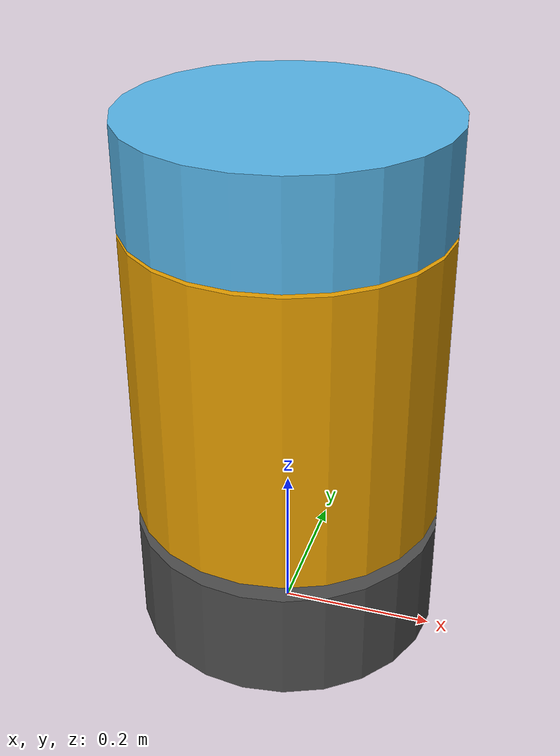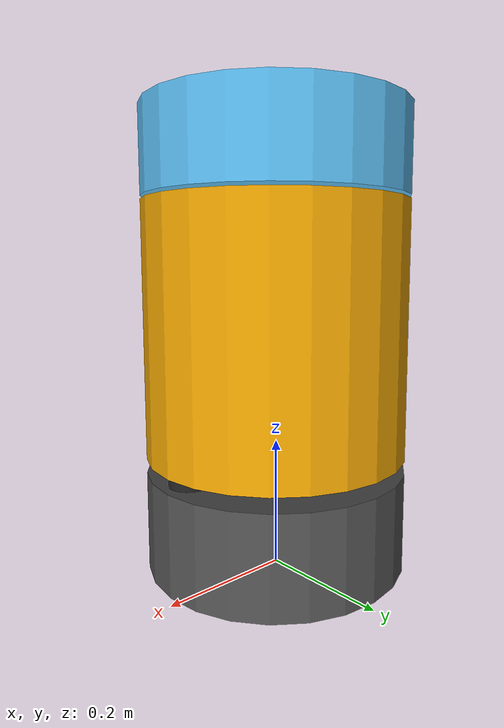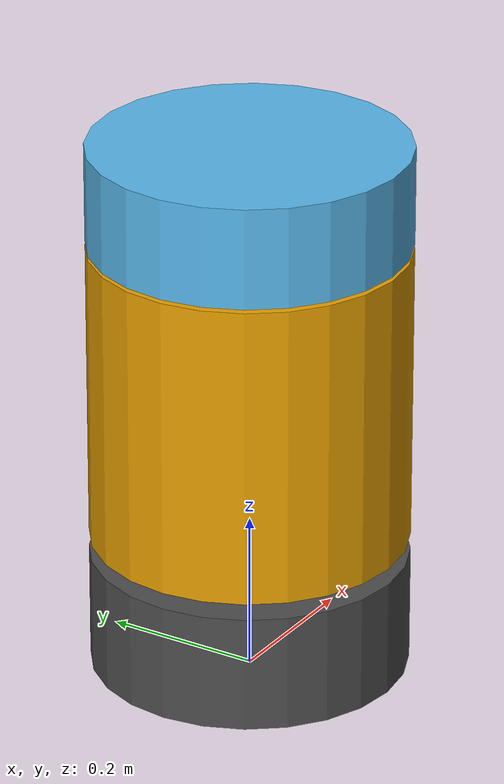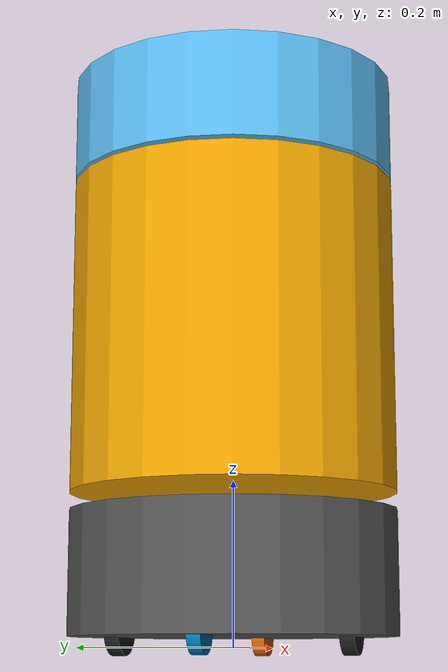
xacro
<?xml version="1.0" ?>
<robot name="GIC_mirus" xmlns:xacro="http://ros.org/wiki/xacro">
	<xacro:include filename="$(find robot_base_description)/config/urdf/mirus.gazebo.xacro"/>

	<link name="base_footprint"/>

	<joint name="base_joint" type="fixed">
		<parent link="base_footprint"/>
		<child link="base_link"/>
		<origin xyz="0 0 0" rpy="0 0 0"/>
	</joint>

	<link name="base_link">
		<visual>
			<origin xyz="0 0 0.0875" rpy="0 0 0"/>
			<geometry>
				<cylinder length="0.15" radius="0.2"/>
			</geometry>
		</visual>
		<collision>
			<origin xyz="0 0 0.0875" rpy="0 0 0"/>
			<geometry>
				<cylinder length="0.15" radius="0.2"/>
			</geometry>
		</collision>
		<inertial>
           <origin xyz="0 0 0" rpy="0 0 0"/>
           <mass value="1.3729096e+00"/>
           <inertia ixx="8.7002718e-03" ixy="-4.7576583e-05" ixz="1.1160499e-04"
                    iyy="8.6195418e-03" iyz="-3.5422299e-06"
                    izz="1.4612727e-02" />
        </inertial>
	</link>

	<joint name="wheel_left_joint" type="continuous">
		<parent link="base_link"/>
		<child link="wheel_left_link"/>
		<origin xyz="0.0 0.144 0.023" rpy="-1.57075 0 0"/>
		<axis xyz="0 0 1"/>
	</joint>

	<link name="wheel_left_link">
		<visual>
			<origin xyz="0 0 0" rpy="0 0 0"/>
			<geometry>
				<cylinder length="0.018" radius="0.033"/>
			</geometry>
		</visual>
		<collision>
			<origin xyz="0 0 0" rpy="0 0 0"/>
			<geometry>
				<cylinder length="0.018" radius="0.033"/>
			</geometry>
		</collision>
	</link>

	<joint name="wheel_right_joint" type="continuous">
		<parent link="base_link"/>
		<child link="wheel_right_link"/>
		<origin xyz="0.0 -0.144 0.023" rpy="-1.57075 0 0"/>
		<axis xyz="0 0 1"/>
	</joint>

	<link name="wheel_right_link">
		<visual>
			<origin xyz="0 0 0" rpy="0 0 0"/>
			<geometry>
				<cylinder length="0.018" radius="0.033"/>
			</geometry>
		</visual>
		<collision>
			<origin xyz="0 0 0" rpy="0 0 0"/>
			<geometry>
				<cylinder length="0.018" radius="0.033"/>
			</geometry>
		</collision>
	</link>

	<joint name="caster_back_joint" type="fixed">
		<parent link="base_link"/>
		<child link="caster_back_link"/>
		<origin xyz="-0.144 0 0.015" rpy="0 -1.57075 0"/>
	</joint>

	<link name="caster_back_link">
		<visual>
			<origin xyz="0 0 0" rpy="1.57075 0 0"/>
			<geometry>
				<cylinder length="0.0165" radius="0.025"/>
			</geometry>
		</visual>
		<collision>
			<origin xyz="0 0 0" rpy="1.57075 0 0"/>
			<geometry>
				<cylinder length="0.0165" radius="0.025"/>
			</geometry>
		</collision>
	</link>

	<joint name="caster_front_joint" type="fixed">
		<parent link="base_link"/>
		<child link="caster_front_link"/>
		<origin xyz="0.144 0 0.015" rpy="0 -1.57075 0"/>
	</joint>

	<link name="caster_front_link">
		<visual>
			<origin xyz="0 0 0" rpy="1.57075 0 0"/>
			<geometry>
				<cylinder length="0.0165" radius="0.025"/>
			</geometry>
		</visual>
		<collision>
			<origin xyz="0 0 0" rpy="1.57075 0 0"/>
			<geometry>
				<cylinder length="0.0165" radius="0.025"/>
			</geometry>
		</collision>
	</link>

	<joint name="imu_joint" type="fixed">
		<parent link="base_link"/>
		<child link="imu_link"/>
		<origin xyz="-0.033 -0.02 0.11" rpy="0 0 0"/>
	</joint>

	<link name="imu_link"/>

	<joint name="scan_joint" type="fixed">
		<parent link="base_link"/>
		<child link="base_scan"/>
		<origin xyz="0.1635 0 0.180" rpy="0 0 0"/>
	</joint>

	<link name="base_scan">
		<visual>
			<origin xyz="0 0 0" rpy="0 0 0"/>
			<geometry>
				<cylinder length="0.0225" radius="0.031"/>
			</geometry>
		</visual>
		<collision>
			<origin xyz="0 0 0" rpy="0 0 0"/>
			<geometry>
				<cylinder length="0.0225" radius="0.031"/>
			</geometry>
		</collision>
	</link>

	<joint name="upper_body_joint" type="fixed">
		<parent link="base_link"/>
		<child link="upper_body_link"/>
		<origin xyz="0 0 0.3765" rpy="0 0 0"/>
	</joint>

	<link name="upper_body_link">
		<visual>
			<origin xyz="0 0 0" rpy="0 0 0"/>
			<geometry>
				<cylinder length="0.385" radius="0.2"/>
			</geometry>
		</visual>
		<collision>
			<origin xyz="0 0 0" rpy="0 0 0"/>
			<geometry>
				<cylinder length="0.385" radius="0.2"/>
			</geometry>
		</collision>
	</link>

	<joint name="head_joint" type="prismatic">
		<parent link="base_link"/>
		<child link="head_link" />
		<limit effort="1000.0" lower="0" upper="0.23" velocity="0.05"/>
		<origin xyz="0 0 0.6375" rpy="0 0 0"/>
		<axis xyz="0 0 1"/>
	</joint>

	<link name="head_link">
		<visual>
			<origin xyz="0 0 0" rpy="0 0 0"/>
			<geometry>
				<cylinder length="0.1275" radius="0.2"/>
			</geometry>
		</visual>
		<collision>
			<origin xyz="0 0 0" rpy="0 0 0"/>
			<geometry>
				<cylinder length="0.1275" radius="0.2"/>
			</geometry>
		</collision>
	</link>

	<joint name="camera_rgb_joint" type="prismatic">
		<parent link="base_link"/>
		<child link="camera_rgb_link"/>
		<limit effort="1000.0" lower="0" upper="0.23" velocity="0.05"/>
		<origin xyz="0 0.16 0.62" rpy="0 0 0"/>
		<mimic joint="head_joint" multiplier="1" offset="0" />
		<axis xyz="0 0 1"/>
	</joint>

	<link name="camera_rgb_link">
		<visual>
			<origin xyz="0 0 0" rpy="0 0 0"/>
			<geometry>
				<box size="0.038 0.012 0.038"/>
			</geometry>
		</visual>
	</link>
</robot>
